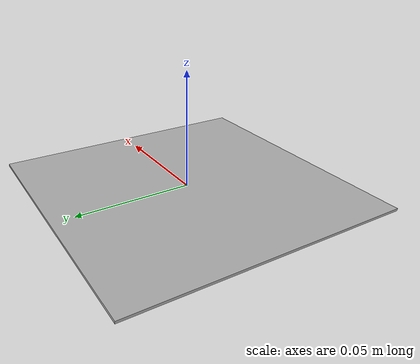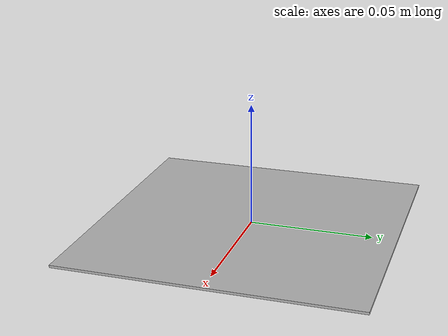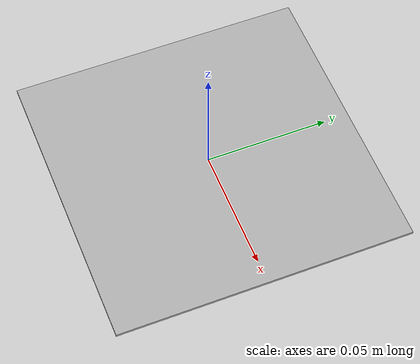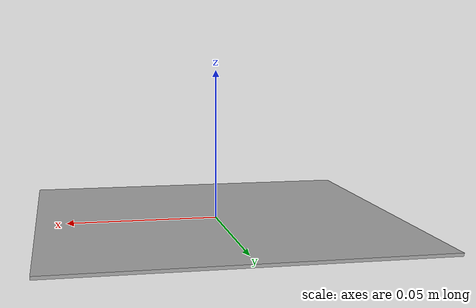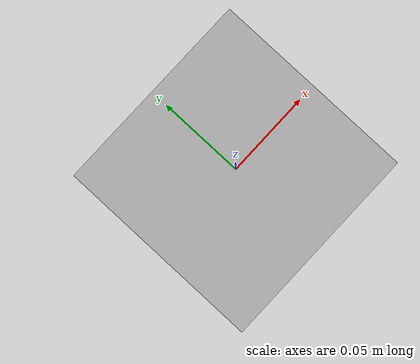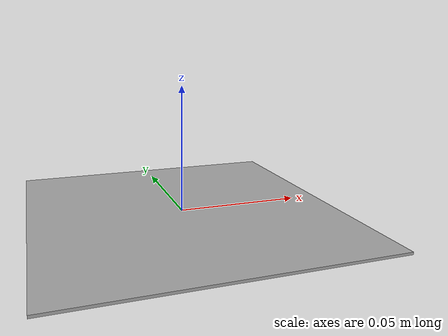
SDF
<?xml version="1.0" ?>
<sdf version="1.4">
  <model name="aruco_marker_12cm_150">
    <static>1</static>
    <link name="marker">
      <inertial>
        <mass>0.1</mass>
        <inertia>
          <ixx>0.000000</ixx>
          <ixy>0.000000</ixy>
          <ixz>0.000000</ixz>
          <iyy>0.000000</iyy>
          <iyz>0.000000</iyz>
          <izz>0.000000</izz>
        </inertia>
      </inertial>
      <visual name="visual">
        <pose>0 0 0 0 0 1.57</pose>
        <geometry>
          <box>
            <size>0.12 0.12 0.001</size>
            <!-- SIZE OF THE MARKER + MARGIN -->
          </box>
        </geometry>
        <material>
          <script>
	    <uri>model://aruco_marker_12cm_150/material/scripts</uri>
	    <uri>model://aruco_marker_12cm_150/material/textures</uri>
            <name>Aruco/aruco_marker_12cm_150</name>
          </script>
        </material>
      </visual>
      <collision name="collision">
        <geometry>
          <box>
            <size>0.12 0.12 0.001</size>
            <!-- SIZE OF THE MARKER + MARGIN -->
          </box>
        </geometry>
        <surface>
          <bounce />
          <friction>
            <ode />
          </friction>
          <contact>
            <ode />
          </contact>
        </surface>
      </collision>
      <self_collide>1</self_collide>
      <kinematic>0</kinematic>
      <gravity>1</gravity>
    </link>
  </model>
</sdf>
